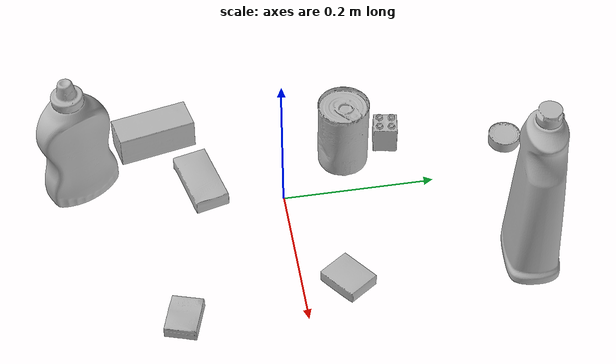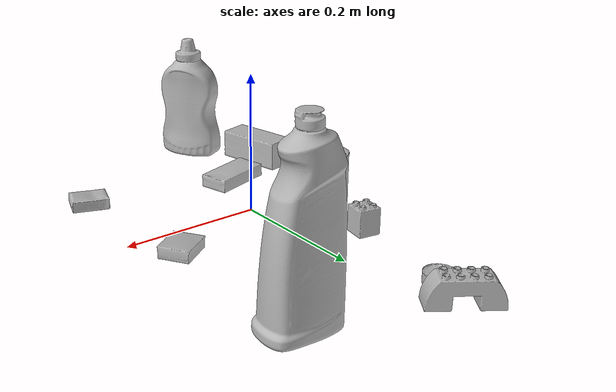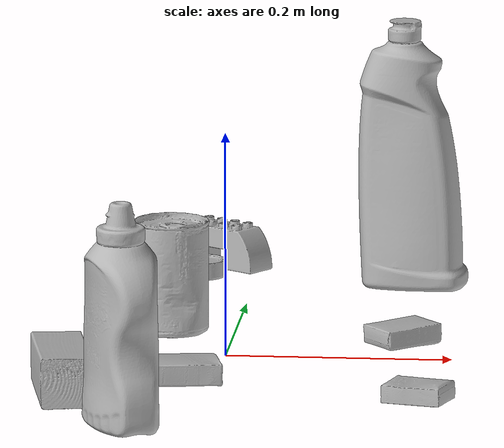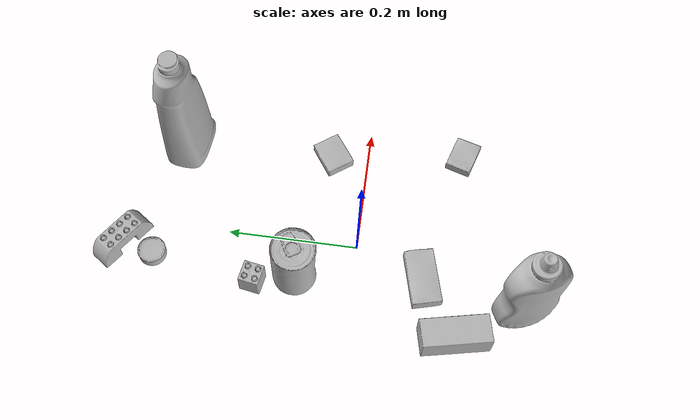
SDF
<sdf version="1.4">
  <world name="default">
    <light name="light1" type="point">
      <pose>0 0 1 0 0 0</pose>
      <diffuse>3 3 3 1</diffuse>
      <specular>3 3 3 1</specular>
    </light>
    <light name="light2" type="point">
      <pose>0 0.5 2 0 0 0</pose>
      <diffuse>1 1 1 1</diffuse>
      <specular>1 1 1 1</specular>
    </light>
    <light name="light3" type="point">
      <pose>0 0.5 2 0 0 0</pose>
      <diffuse>3 3 3 1</diffuse>
      <specular>3 3 3 1</specular>
    </light>
    <scene>
      <ambient>0.7 0.7 0.7</ambient>
    </scene>
    <model name="bottle1">
      <link name="link_bottle1">
        <collision name="default">
          <geometry>
            <mesh>
              <uri>model://bleach_cleanser/collision_meshes/collision.obj</uri>
              <scale>1.0 1.0 1.0</scale>
            </mesh>
          </geometry>
          <surface>
            <friction>
              <ode>
                <mu>0.5</mu>
                <mu2>0.5</mu2>
              </ode>
            </friction>
          <contact>
        <ode>
            <max_vel>0</max_vel>
            <min_depth>0.0001</min_depth>
            <kp>1e8</kp>
        </ode>
    </contact></surface>
        </collision>
        <visual name="default">
          <geometry>
            <mesh>
              <uri>model://bleach_cleanser/visual_meshes/visual.dae</uri>
              <scale>1.0 1.0 1.0</scale>
            </mesh>
          </geometry>
        </visual>
        <inertial>
          <mass>0.7954697608947754</mass>
          <pose>0.00012193184375064448 0.0037838825955986977 -0.02442161552608013 -0.0738167061583634 0.000420116841178447 -0.006875049257496471</pose>
          <inertia>
            <ixx>0.003871667</ixx>
            <iyy>0.0036078263</iyy>
            <izz>0.00066195446</izz>
            <ixy>0</ixy>
            <ixz>0</ixz>
            <iyz>0</iyz>
          </inertia>
        </inertial>
      </link>
      <pose>0.1474616676568985 0.2903863787651062 0.12578414380550385 -0.0002010779900391438 1.5218043803337048e-05 1.499995010535886</pose>
    </model>
    <model name="bottle2">
      <link name="link_bottle2">
        <collision name="default">
          <geometry>
            <mesh>
              <uri>model://mustard_bottle/collision_meshes/collision.obj</uri>
              <scale>1.0 1.0 1.0</scale>
            </mesh>
          </geometry>
          <surface>
            <friction>
              <ode>
                <mu>0.5</mu>
                <mu2>0.5</mu2>
              </ode>
            </friction>
          <contact>
        <ode>
            <max_vel>0</max_vel>
            <min_depth>0.0001</min_depth>
            <kp>1e8</kp>
        </ode>
    </contact></surface>
        </collision>
        <visual name="default">
          <geometry>
            <mesh>
              <uri>model://mustard_bottle/visual_meshes/visual.dae</uri>
              <scale>1.0 1.0 1.0</scale>
            </mesh>
          </geometry>
        </visual>
        <inertial>
          <mass>0.5118113160133362</mass>
          <pose>0.0005032453336752951 -0.00015647397958673537 -0.017475785687565804 0.0004182313596805905 0.000946575919178121 0.024853765212265823</pose>
          <inertia>
            <ixx>0.00142123</ixx>
            <iyy>0.0012470091</iyy>
            <izz>0.0003745659</izz>
            <ixy>0</ixy>
            <ixz>0</ixz>
            <iyz>0</iyz>
          </inertia>
        </inertial>
      </link>
      <pose>-0.06253192573785782 -0.2579509913921356 0.09583088755607605 -0.012050642944965292 -0.004889870058255965 -2.687191623585028</pose>
    </model>
    <model name="toy1">
      <link name="link_toy1">
        <collision name="default">
          <geometry>
            <mesh>
              <uri>model://b_lego_duplo/collision_meshes/collision.obj</uri>
              <scale>1.0 1.0 1.0</scale>
            </mesh>
          </geometry>
          <surface>
            <friction>
              <ode>
                <mu>0.5</mu>
                <mu2>0.5</mu2>
              </ode>
            </friction>
          <contact>
        <ode>
            <max_vel>0</max_vel>
            <min_depth>0.0001</min_depth>
            <kp>1e8</kp>
        </ode>
    </contact></surface>
        </collision>
        <visual name="default">
          <geometry>
            <mesh>
              <uri>model://b_lego_duplo/visual_meshes/visual.dae</uri>
              <scale>1.0 1.0 1.0</scale>
            </mesh>
          </geometry>
        </visual>
        <inertial>
          <mass>0.04622781649231911</mass>
          <pose>-0.00011053043272113428 -9.152668098977301e-06 0.0019294294761493802 -0.037494565787594906 -0.026354503997733224 0.45188645636516256</pose>
          <inertia>
            <ixx>9.46087e-06</ixx>
            <iyy>9.524471e-06</iyy>
            <izz>8.429326e-06</izz>
            <ixy>0</ixy>
            <ixz>0</ixz>
            <iyz>0</iyz>
          </inertia>
        </inertial>
      </link>
      <pose>-0.07720602303743362 0.1500954031944275 0.021814942359924316 3.223155443509366e-05 3.3305807447813066e-05 -1.742457525784925</pose>
    </model>
    <model name="toy2">
      <link name="link_toy2">
        <collision name="default">
          <geometry>
            <mesh>
              <uri>model://e_lego_duplo/collision_meshes/collision.obj</uri>
              <scale>1.0 1.0 1.0</scale>
            </mesh>
          </geometry>
          <surface>
            <friction>
              <ode>
                <mu>0.5</mu>
                <mu2>0.5</mu2>
              </ode>
            </friction>
          <contact>
        <ode>
            <max_vel>0</max_vel>
            <min_depth>0.0001</min_depth>
            <kp>1e8</kp>
        </ode>
    </contact></surface>
        </collision>
        <visual name="default">
          <geometry>
            <mesh>
              <uri>model://e_lego_duplo/visual_meshes/visual.dae</uri>
              <scale>1.0 1.0 1.0</scale>
            </mesh>
          </geometry>
        </visual>
        <inertial>
          <mass>0.08809097856283188</mass>
          <pose>0.00032560486579313874 0.00023485404381062835 0.0019521467620506883 -0.022567425824888195 -6.82459351116558e-05 -0.007625145117383363</pose>
          <inertia>
            <ixx>1.836988e-05</ixx>
            <iyy>7.539474e-05</iyy>
            <izz>7.34193e-05</izz>
            <ixy>0</ixy>
            <ixz>0</ixz>
            <iyz>0</iyz>
          </inertia>
        </inertial>
      </link>
      <pose>-0.03746844828128815 0.3595672845840454 0.021808961406350136 3.573070693685181e-06 3.791454979255898e-07 -0.6079493685783927</pose>
    </model>
    <model name="can1">
      <link name="link_can1">
        <collision name="default">
          <geometry>
            <mesh>
              <uri>model://tomato_soup_can/collision_meshes/collision.obj</uri>
              <scale>1.0 1.0 1.0</scale>
            </mesh>
          </geometry>
          <surface>
            <friction>
              <ode>
                <mu>0.5</mu>
                <mu2>0.5</mu2>
              </ode>
            </friction>
          <contact>
        <ode>
            <max_vel>0</max_vel>
            <min_depth>0.0001</min_depth>
            <kp>1e8</kp>
        </ode>
    </contact></surface>
        </collision>
        <visual name="default">
          <geometry>
            <mesh>
              <uri>model://tomato_soup_can/visual_meshes/visual.dae</uri>
              <scale>1.0 1.0 1.0</scale>
            </mesh>
          </geometry>
        </visual>
        <inertial>
          <mass>0.4347945749759674</mass>
          <pose>0.0001265227037947625 0.00010805525380419567 -0.0017973979702219367 0.007020064127759274 0.0004229940757469139 -0.009903323281130803</pose>
          <inertia>
            <ixx>0.00047671542</ixx>
            <iyy>0.00047396024</iyy>
            <izz>0.00024707714</izz>
            <ixy>0</ixy>
            <ixz>0</ixz>
            <iyz>0</iyz>
          </inertia>
        </inertial>
      </link>
      <pose>-0.05742008239030838 0.08888973295688629 0.05127400904893875 -3.5952813096249395e-07 -6.847197134164826e-07 1.8517197667561056</pose>
    </model>
    <model name="can2">
      <link name="link_can2">
        <collision name="default">
          <geometry>
            <mesh>
              <uri>model://tuna_fish_can/collision_meshes/collision.obj</uri>
              <scale>0.5 0.5 0.5</scale>
            </mesh>
          </geometry>
          <surface>
            <friction>
              <ode>
                <mu>0.5</mu>
                <mu2>0.5</mu2>
              </ode>
            </friction>
          <contact>
        <ode>
            <max_vel>0</max_vel>
            <min_depth>0.0001</min_depth>
            <kp>1e8</kp>
        </ode>
    </contact></surface>
        </collision>
        <visual name="default">
          <geometry>
            <mesh>
              <uri>model://tuna_fish_can/visual_meshes/visual.dae</uri>
              <scale>0.5 0.5 0.5</scale>
            </mesh>
          </geometry>
        </visual>
        <inertial>
          <mass>0.02951119653880596</mass>
          <pose>-2.0361847418826073e-05 -7.256335720740026e-06 -0.0005269026733003557 -0.0017944763161136105 0.00017161533088142807 0.2405366956082085</pose>
          <inertia>
            <ixx>3.989958e-06</ixx>
            <iyy>3.9733272e-06</iyy>
            <izz>6.827389e-06</izz>
            <ixy>0</ixy>
            <ixz>0</ixz>
            <iyz>0</iyz>
          </inertia>
        </inertial>
      </link>
      <pose>-0.05190769582986832 0.3102909028530121 0.008520000614225864 -2.5488428534448108e-08 8.083010045610322e-09 -1.3476666689044259</pose>
    </model>
    <model name="box1">
      <link name="link_box1">
        <collision name="default">
          <geometry>
            <mesh>
              <uri>model://sugar_box/collision_meshes/collision.obj</uri>
              <scale>0.5 0.5 0.5</scale>
            </mesh>
          </geometry>
          <surface>
            <friction>
              <ode>
                <mu>0.5</mu>
                <mu2>0.5</mu2>
              </ode>
            </friction>
          <contact>
        <ode>
            <max_vel>0</max_vel>
            <min_depth>0.0001</min_depth>
            <kp>1e8</kp>
        </ode>
    </contact></surface>
        </collision>
        <visual name="default">
          <geometry>
            <mesh>
              <uri>model://sugar_box/visual_meshes/visual.dae</uri>
              <scale>0.5 0.5 0.5</scale>
            </mesh>
          </geometry>
        </visual>
        <inertial>
          <mass>0.10932230949401855</mass>
          <pose>0.0005171863595023751 1.924554817378521e-05 -0.00018182402709499002 -0.00040462630024242077 0.0010506636385781449 0.0026153787888990553</pose>
          <inertia>
            <ixx>2.277176e-05</ixx>
            <iyy>7.3603005e-05</iyy>
            <izz>8.811158e-05</izz>
            <ixy>0</ixy>
            <ixz>0</ixz>
            <iyz>0</iyz>
          </inertia>
        </inertial>
      </link>
      <pose>-0.03947604075074196 -0.10419706255197525 0.011399298906326294 0.000774677529860315 -0.023433018577923563 -2.896114468970961</pose>
    </model>
    <model name="box2">
      <link name="link_box2">
        <collision name="default">
          <geometry>
            <mesh>
              <uri>model://pudding_box/collision_meshes/collision.obj</uri>
              <scale>0.5 0.5 0.5</scale>
            </mesh>
          </geometry>
          <surface>
            <friction>
              <ode>
                <mu>0.5</mu>
                <mu2>0.5</mu2>
              </ode>
            </friction>
          <contact>
        <ode>
            <max_vel>0</max_vel>
            <min_depth>0.0001</min_depth>
            <kp>1e8</kp>
        </ode>
    </contact></surface>
        </collision>
        <visual name="default">
          <geometry>
            <mesh>
              <uri>model://pudding_box/visual_meshes/visual.dae</uri>
              <scale>0.5 0.5 0.5</scale>
            </mesh>
          </geometry>
        </visual>
        <inertial>
          <mass>0.061322033405303955</mass>
          <pose>0.00024474109522998333 0.00040339428232982755 -0.0002594413817860186 0.0052131013423229325 -0.006603797777692156 0.020079823300565562</pose>
          <inertia>
            <ixx>1.733035e-05</ixx>
            <iyy>1.1659984e-05</iyy>
            <izz>2.559279e-05</izz>
            <ixy>0</ixy>
            <ixz>0</ixz>
            <iyz>0</iyz>
          </inertia>
        </inertial>
      </link>
      <pose>0.1525200605392456 0.0573517307639122 0.00986290629953146 0.022348448185680617 -0.011391755568586175 -0.9538361765299593</pose>
    </model>
    <model name="box3">
      <link name="link_box3">
        <collision name="default">
          <geometry>
            <mesh>
              <uri>model://cracker_box/collision_meshes/collision.obj</uri>
              <scale>0.25 0.25 0.25</scale>
            </mesh>
          </geometry>
          <surface>
            <friction>
              <ode>
                <mu>0.5</mu>
                <mu2>0.5</mu2>
              </ode>
            </friction>
          <contact>
        <ode>
            <max_vel>0</max_vel>
            <min_depth>0.0001</min_depth>
            <kp>1e8</kp>
        </ode>
    </contact></surface>
        </collision>
        <visual name="default">
          <geometry>
            <mesh>
              <uri>model://cracker_box/visual_meshes/visual.dae</uri>
              <scale>0.25 0.25 0.25</scale>
            </mesh>
          </geometry>
        </visual>
        <inertial>
          <mass>0.05027599632740021</mass>
          <pose>0.00023660380975343287 6.358561222441494e-05 -0.00042573834070935845 -0.0003162076618733006 -0.011106490531610344 0.00254679570085012</pose>
          <inertia>
            <ixx>7.992481e-06</ixx>
            <iyy>1.3197154e-05</iyy>
            <izz>1.8833553e-05</izz>
            <ixy>0</ixy>
            <ixz>0</ixz>
            <iyz>0</iyz>
          </inertia>
        </inertial>
      </link>
      <pose>0.17913809418678284 -0.15052758157253265 0.009096027351915836 -0.014051279174606192 -0.005016252970193651 -0.30445097086659906</pose>
    </model>
    <model name="box4">
      <link name="link_box4">
        <collision name="default">
          <geometry>
            <mesh>
              <uri>model://wood_block/collision_meshes/collision.obj</uri>
              <scale>0.5 0.5 0.5</scale>
            </mesh>
          </geometry>
          <surface>
            <friction>
              <ode>
                <mu>0.5</mu>
                <mu2>0.5</mu2>
              </ode>
            </friction>
          <contact>
        <ode>
            <max_vel>0</max_vel>
            <min_depth>0.0001</min_depth>
            <kp>1e8</kp>
        </ode>
    </contact></surface>
        </collision>
        <visual name="default">
          <geometry>
            <mesh>
              <uri>model://wood_block/visual_meshes/visual.dae</uri>
              <scale>0.5 0.5 0.5</scale>
            </mesh>
          </geometry>
        </visual>
        <inertial>
          <mass>0.30035653710365295</mass>
          <pose>-2.9066577553749084e-06 -0.000285404734313488 0.00013204291462898254 -0.05221128362191582 -0.005192695718477931 -0.0068613783725326285</pose>
          <inertia>
            <ixx>0.00010048062</ixx>
            <iyy>0.00031741828</iyy>
            <izz>0.00031623102</izz>
            <ixy>0</ixy>
            <ixz>0</ixz>
            <iyz>0</iyz>
          </inertia>
        </inertial>
      </link>
      <pose>-0.1261202096939087 -0.15778779983520508 0.022850247099995613 1.5681417197269416 -0.006938340386942684 -1.3500837046455647</pose>
    </model>
  <physics type="ode">
      <max_contacts>50</max_contacts>
      <ode>
        <solver>
          <type>quick</type>
          <iters>75</iters>
        </solver>
        <constraints>
          <contact_max_correcting_vel>0</contact_max_correcting_vel>
          <contact_surface_layer>0</contact_surface_layer>
        </constraints>
      </ode>
    </physics></world>
</sdf>
